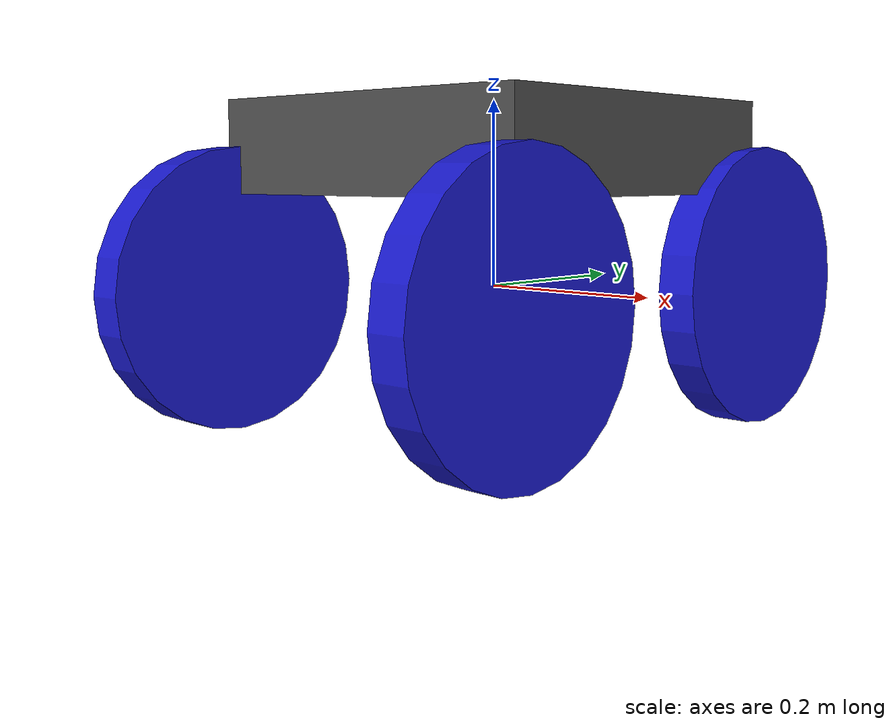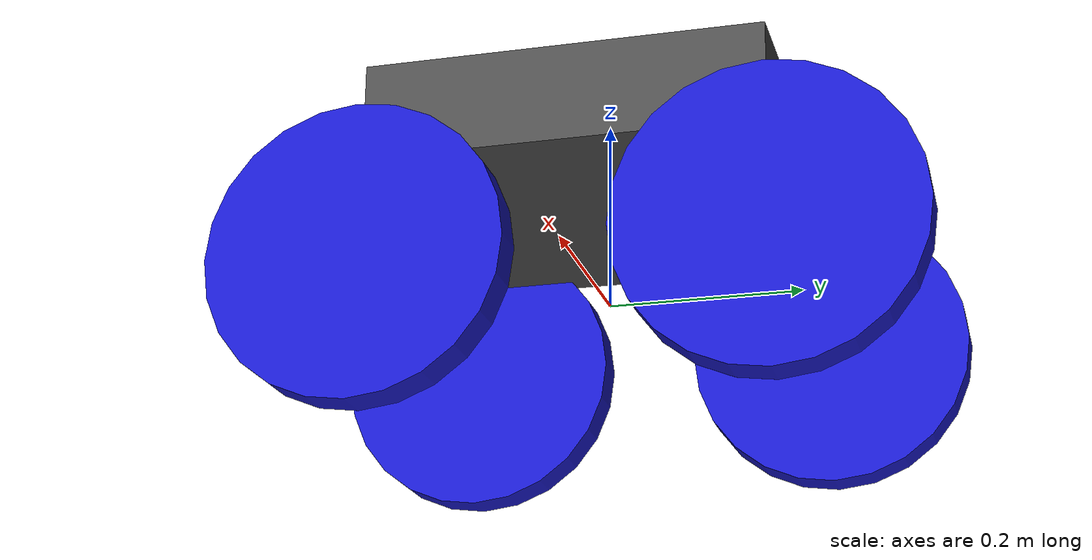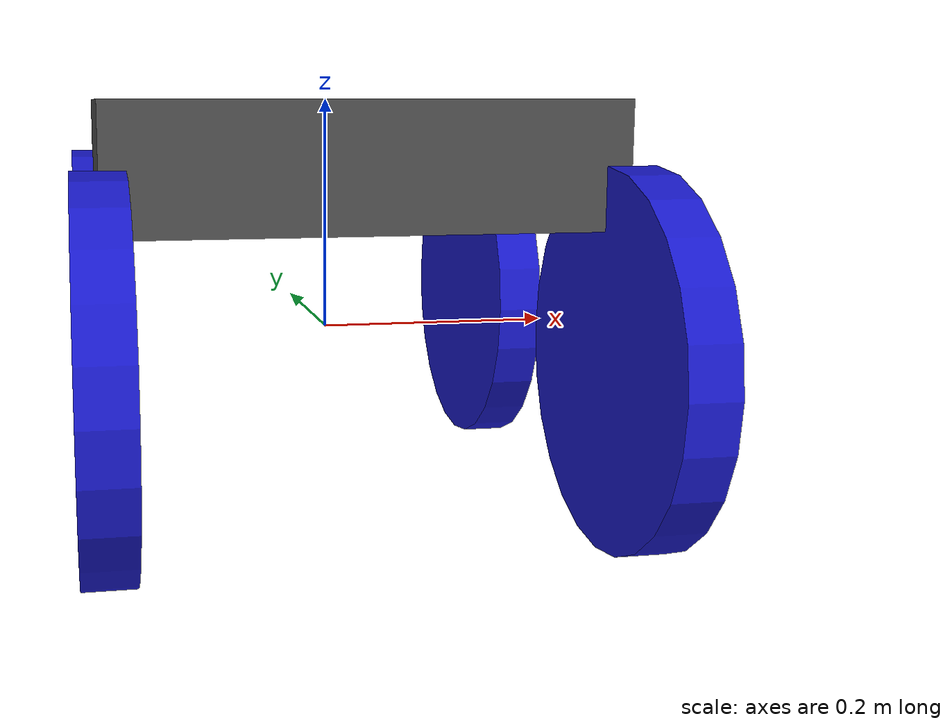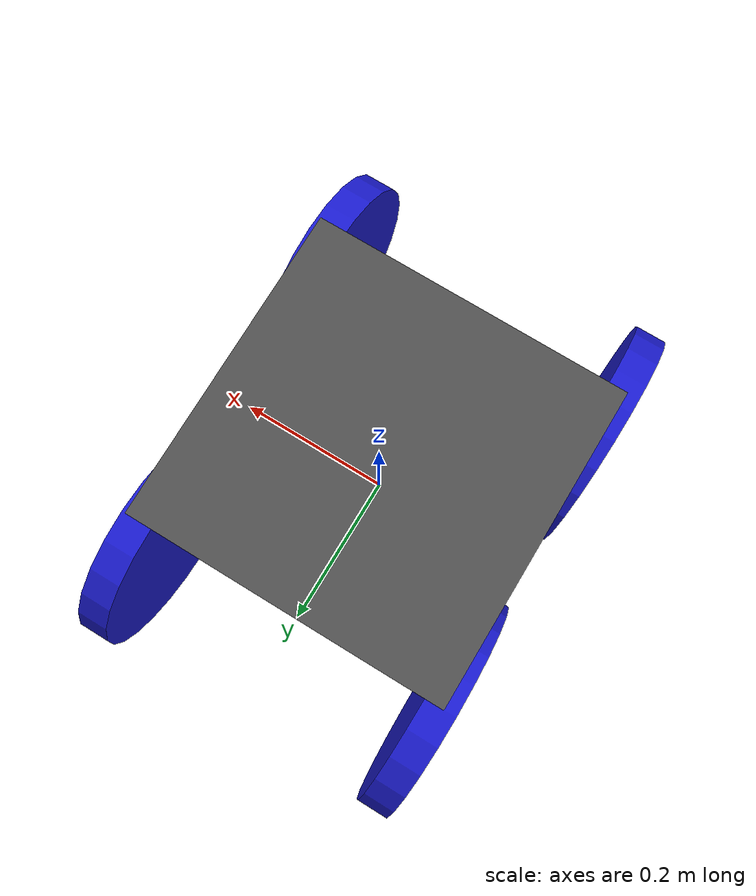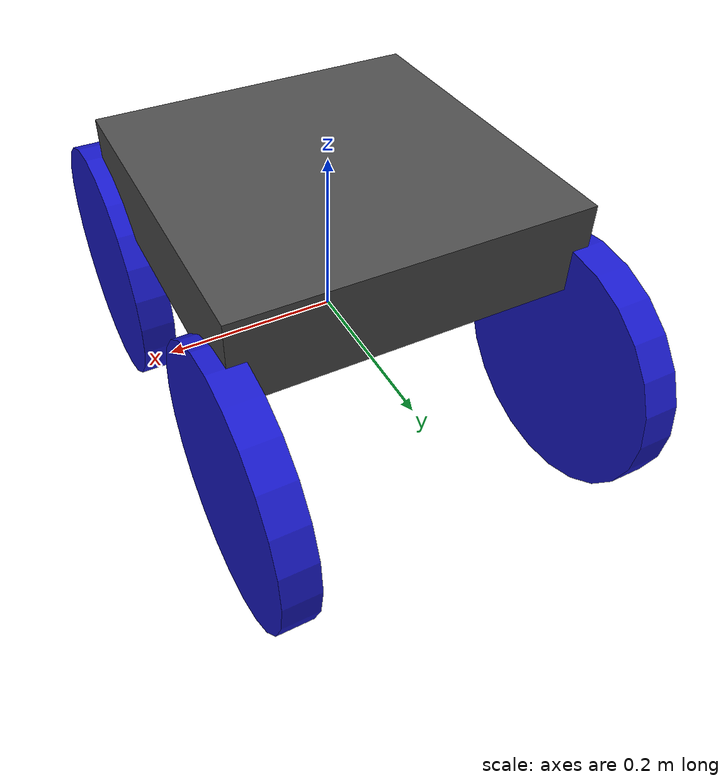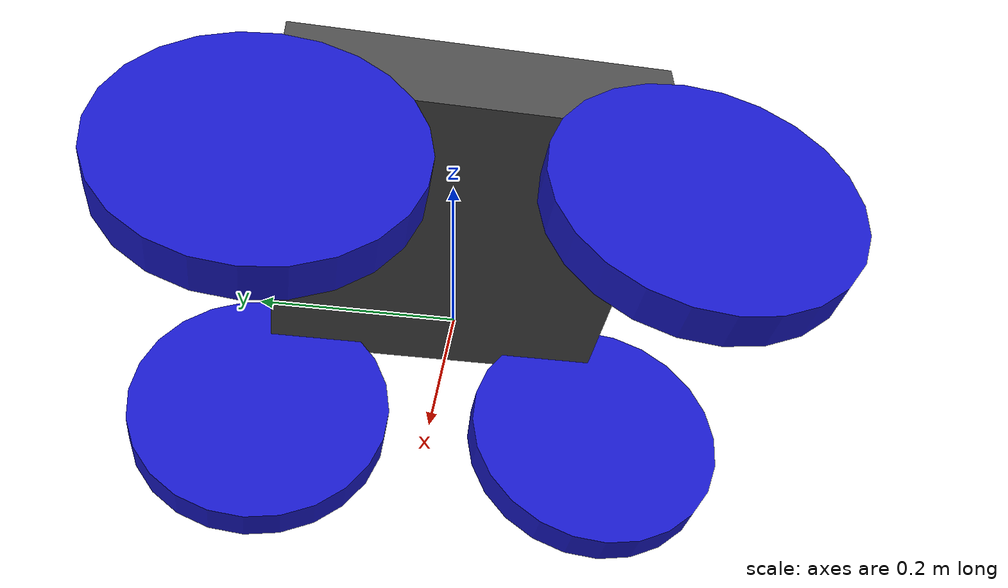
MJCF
<mujoco model="car">
  <!-- ===== Global config ===== -->
  <compiler angle="degree" coordinate="local" inertiafromgeom="true"/>
  <option timestep="0.01" iterations="4"/>

  <!-- ===== Custom parameters ===== -->
  <custom>
    <numeric name="init_qpos" data="0 0 0.15 1 0 0 0"/>
    <numeric name="constraint_stiffness" data="4000"/>
    <numeric name="constraint_damping" data="10"/>
  </custom>

  <!-- ===== Defaults ===== -->
  <default>
    <joint armature="0.1" damping="0.5" limited="true"/>
    <geom contype="0" conaffinity="0" condim="3" density="500" friction="1 0.5 0.5" rgba="0.3 0.3 0.3 1"/>
  </default>

  <!-- ===== Assets ===== -->
  <asset>
    <texture builtin="checker" name="texplane" type="2d" width="100" height="100" rgb1="0.2 0.2 0.2" rgb2="0.8 0.8 0.8"/>
    <material name="MatPlane" texture="texplane" texrepeat="40 40" reflectance="0.2"/>
    <material name="MatCar" rgba="0.8 0.2 0.2 1"/>
  </asset>

  <!-- ===== World body ===== -->
  <worldbody>

    <body name="car_body" pos="0 0 0.15">
      <camera name="track" mode="trackcom" pos="0 -2 0.5" xyaxes="1 0 0 0 0 1"/>
      <joint name="root" type="free"/>
      <geom name="chassis" type="box" size="0.2 0.2 0.05" material="MatCar"/>

      <body name="front_left_wheel" pos="0.2 0.2 -0.15">
        <joint name="joint_fl" axis="0 1 0" type="hinge" range="-360 360" damping="0.1"/>
        <geom type="cylinder" size="0.15 0.02" rgba="0.1 0.1 0.8 1" euler="0 90 0"/>
      </body>

      <body name="front_right_wheel" pos="0.2 -0.2 -0.15">
        <joint name="joint_fr" axis="0 1 0" type="hinge" range="-360 360" damping="0.1"/>
        <geom type="cylinder" size="0.15 0.02" rgba="0.1 0.1 0.8 1" euler="0 90 0"/>
      </body>

      <body name="rear_left_wheel" pos="-0.2 0.2 -0.15">
        <joint name="joint_rl" axis="0 1 0" type="hinge" range="-360 360" damping="0.1"/>
        <geom type="cylinder" size="0.15 0.02" rgba="0.1 0.1 0.8 1" euler="0 90 0"/>
      </body>

      <body name="rear_right_wheel" pos="-0.2 -0.2 -0.15">
        <joint name="joint_rr" axis="0 1 0" type="hinge" range="-360 360" damping="0.1"/>
        <geom type="cylinder" size="0.15 0.02" rgba="0.1 0.1 0.8 1" euler="0 90 0"/>
      </body>

    </body>
  </worldbody>

  <!-- ===== Actuators ===== -->
  <actuator>
    <motor joint="joint_fl" gear="150" ctrlrange="-1 1" ctrllimited="true"/>
    <motor joint="joint_fr" gear="150" ctrlrange="-1 1" ctrllimited="true"/>
    <motor joint="joint_rl" gear="150" ctrlrange="-1 1" ctrllimited="true"/>
    <motor joint="joint_rr" gear="150" ctrlrange="-1 1" ctrllimited="true"/>
  </actuator>
</mujoco>
